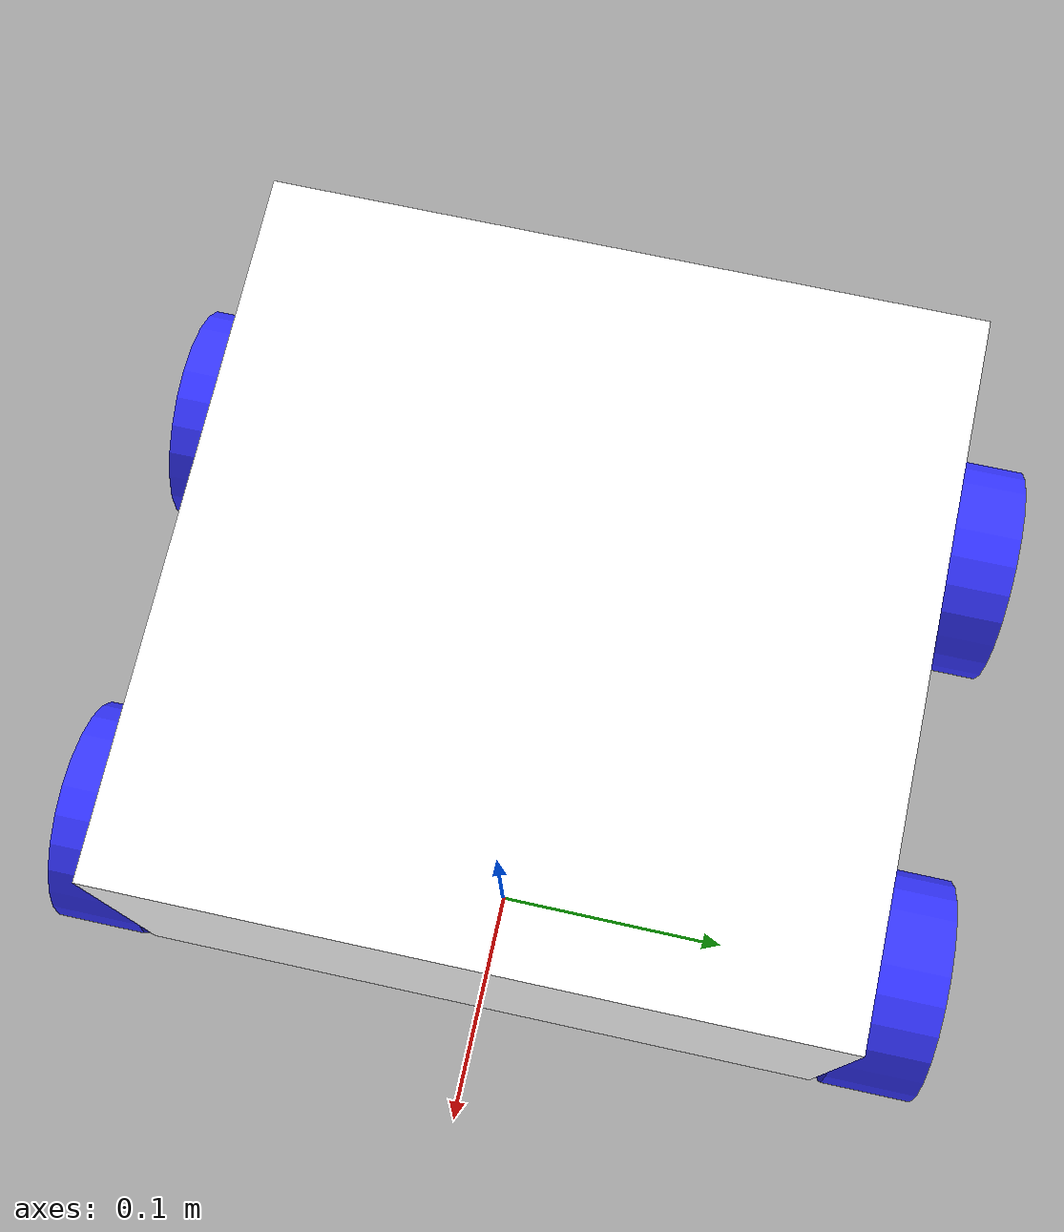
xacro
<?xml version="1.0"?>
<robot xmlns:xacro="http://www.ros.org/wiki/xacro" >

    <xacro:include filename="inertial_macros.xacro"/>

    <material name="white">
        <color rgba="1 1 1 1" />
    </material>

    <material name="orange">
        <color rgba="1 0.3 0.1 1" />
    </material>

    <material name="blue">
        <color rgba="0.2 0.2 1 1" />
    </material>

    <material name="black">
        <color rgba="0 0 0 1" />
    </material>

    <material name="red">
        <color rgba="1 0 0 1" />
    </material>

    <!--BASE LINK-->

   <link name="base_link">

   </link>

    <!--CHASSIS LINK-->

    <joint name="chassis_joint" type="fixed" >
        <parent link="base_link" />
        <child link="chassis" />
        <origin xyz="-0.25 0 0" />
    </joint>

    <link name="chassis">
        <visual>
            <origin xyz="0.15 0 0.075"/>
            <geometry>
                <box size="0.3 0.3 0.15"/>
            </geometry>
            <material name ="white"/>
        </visual>
        <collision>
            <origin xyz="0.15 0 0.075"/>
            <geometry>
                <box size="0.3 0.3 0.15"/>
            </geometry>
        </collision>
        <xacro:inertial_box mass="0.5" x="0.3" y="0.3" z="0.15">
            <origin xyz="0.15 0 0.075" rpy="0 0 0"/>
        </xacro:inertial_box>
    </link>

    <gazebo reference="chassis">
        <material>Gazebo/white</material>
    </gazebo>

    <!--LEFT WHEEL FRONT LINK-->

    <joint name="left_wheel_joint_front" type="continuous">
        <parent link="base_link"/>
        <child link="left_wheel_front"/>
        <origin xyz="0 0.175 0" rpy="-${pi/2} 0 0"/>
        <axis xyz="0 0 1"/>
    </joint>

    <link name="left_wheel_front">
        <visual>
            <geometry>
                <cylinder radius="0.05" length="0.04"/>
            </geometry>
            <material name="blue"/>
        </visual>
        <collision>
            <geometry>
                <cylinder radius="0.05" length="0.04"/>
            </geometry>
        </collision>
        <xacro:inertial_cylinder mass="0.1" length="0.04" radius="0.05">
            <origin xyz="0 0 0" rpy="0 0 0"/>
        </xacro:inertial_cylinder>
    </link>

    <gazebo reference="left_wheel_front">
        <material>Gazebo/Blue</material>
    </gazebo>

    <!--RIGHT WHEEL FRONT LINK-->

    <joint name="right_wheel_joint_front" type="continuous">
        <parent link="base_link"/>
        <child link="right_wheel_front"/>
        <origin xyz="0 -0.175 0" rpy="${pi/2} 0 0"/>
        <axis xyz="0 0 -1"/>
    </joint>

    <link name="right_wheel_front">
        <visual>
            <geometry>
                <cylinder radius="0.05" length="0.04"/>
            </geometry>
            <material name="blue"/>
        </visual>
        <collision>
            <geometry>
                <cylinder radius="0.05" length="0.04"/>
            </geometry>
        </collision>
        <xacro:inertial_cylinder mass="0.1" length="0.04" radius="0.05">
            <origin xyz="0 0 0" rpy="0 0 0"/>
        </xacro:inertial_cylinder>
    </link>

    <gazebo reference="right_wheel_front">
        <material>Gazebo/Blue</material>
    </gazebo>

    <!--LEFT WHEEL BACK LINK-->

    <joint name="left_wheel_joint_back" type="fixed">
        <parent link="chassis"/>
        <child link="left_wheel_back"/>
        <origin xyz="0.05 0.175 0" rpy="-${pi/2} 0 0"/>
    </joint>

    <link name="left_wheel_back">
        <visual>
            <geometry>
                <cylinder radius="0.05" length="0.04"/>
            </geometry>
            <material name="blue"/>
        </visual>
        <collision>
            <geometry>
                <cylinder radius="0.05" length="0.04"/>
            </geometry>
        </collision>
        <xacro:inertial_cylinder mass="0.1" length="0.04" radius="0.05">
            <origin xyz="0 0 0" rpy="0 0 0"/>
        </xacro:inertial_cylinder>
    </link>

    <gazebo reference="left_wheel_back">
        <material>Gazebo/Blue</material>
        <mu1 value="0.001"/>
        <mu2 value="0.001"/>
    </gazebo>

    <!--RIGHT WHEEL BACK LINK-->

    <joint name="right_wheel_joint_back" type="fixed">
        <parent link="chassis"/>
        <child link="right_wheel_back"/>
        <origin xyz="0.05 -0.175 0" rpy="${pi/2} 0 0"/>
    </joint>

    <link name="right_wheel_back">
        <visual>
            <geometry>
                <cylinder radius="0.05" length="0.04"/>
            </geometry>
            <material name="blue"/>
        </visual>
        <collision>
            <geometry>
                <cylinder radius="0.05" length="0.04"/>
            </geometry>
        </collision>
        <xacro:inertial_cylinder mass="0.1" length="0.04" radius="0.05">
            <origin xyz="0 0 0" rpy="0 0 0"/>
        </xacro:inertial_cylinder>
    </link>

    <gazebo reference="right_wheel_back">
        <material>Gazebo/Blue</material>
        <mu1 value="0.001"/>
        <mu2 value="0.001"/>
    </gazebo>

</robot>

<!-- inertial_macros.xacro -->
<robot xmlns:xacro="http://www.ros.org/wiki/xacro" >

    <xacro:macro name="inertial_box" params="mass x y z *origin">
        <inertial>
            <xacro:insert_block name="origin"/>
            <mass value="${mass}" />
            <inertia ixx="${(1/12) * mass * (y*y+z*z)}" ixy="0.0" ixz="0.0"
                    iyy="${(1/12) * mass * (x*x+z*z)}" iyz="0.0"
                    izz="${(1/12) * mass * (x*x+y*y)}" />
        </inertial>
    </xacro:macro>

    <xacro:macro name="inertial_cylinder" params="mass length radius *origin">
        <inertial>
            <xacro:insert_block name="origin"/>
            <mass value="${mass}" />
            <inertia ixx="${(1/12) * mass * (3*radius*radius + length*length)}" ixy="0.0" ixz="0.0"
                    iyy="${(1/12) * mass * (3*radius*radius + length*length)}" iyz="0.0"
                    izz="${(1/2) * mass * (radius*radius)}" />
        </inertial>
    </xacro:macro>

</robot>
